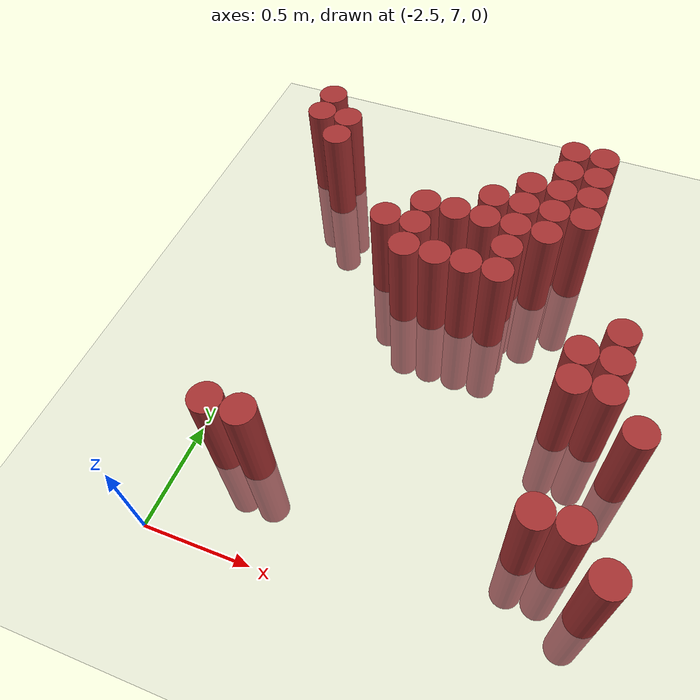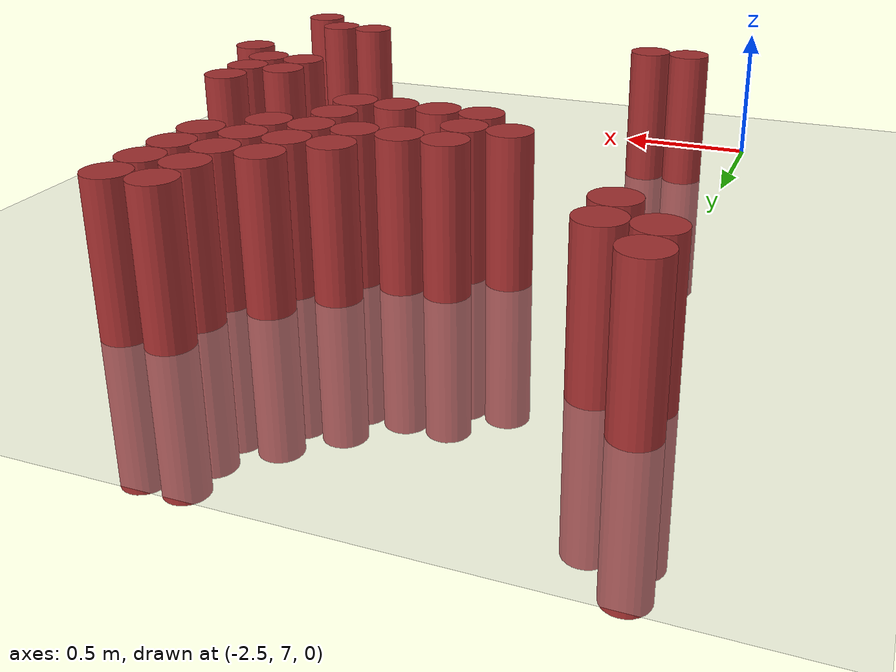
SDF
<sdf version="1.6">
 <world name="default">
  <model name="ground_plane">
   <static>1</static>
   <link name="link">
    <collision name="collision">
     <geometry><plane><normal>0 0 1</normal><size>100 100</size></plane></geometry>
     <surface><friction><ode><mu>100</mu><mu2>50</mu2></ode></friction></surface>
    </collision>
    <visual name="visual">
     <cast_shadows>0</cast_shadows>
     <geometry><plane><normal>0 0 1</normal><size>100 100</size></plane></geometry>
     <material>
      <script><uri>file://media/materials/scripts/gazebo.material</uri><name>Gazebo/Grey</name></script>
     </material>
    </visual>
   </link>
  </model>
  <model name="unit_cylinder_204">
   <static>1</static>
   <pose>-2.625000 9.225000 0.000000 0.000000 0.000000 0.000000</pose>
   <link name="link">
    <inertial>
     <mass>1</mass>
     <inertia><ixx>0.145833</ixx><ixy>0</ixy><ixz>0</ixz><iyy>0.145833</iyy><iyz>0</iyz><izz>0.125</izz></inertia>
    </inertial>
    <collision name="collision">
     <geometry><cylinder><radius>0.075000</radius><length>1</length></cylinder></geometry>
    </collision>
    <visual name="visual">
     <geometry><cylinder><radius>0.075000</radius><length>1</length></cylinder></geometry>
     <material>
      <ambient>0.648000 0.192000 0.192000 1</ambient>
      <diffuse>0.648000 0.192000 0.192000 1</diffuse>
     </material>
     <material>
      <script><name>Gazebo/Grey</name><uri>file://media/materials/scripts/gazebo.material</uri></script>
     </material>
    </visual>
    <sensor name="sensor_contact" type="contact"><contact><collision>collision</collision></contact></sensor>
   </link>
   <plugin filename="gz-sim-touchplugin-system" name="gz::sim::systems::TouchPlugin">
    <target>robot</target>
    <namespace>robot</namespace>
    <time>0.001</time>
    <enabled>true</enabled>
   </plugin>
  </model>
  <model name="unit_cylinder_205">
   <static>1</static>
   <pose>-2.625000 9.375000 0.000000 0.000000 0.000000 0.000000</pose>
   <link name="link">
    <inertial>
     <mass>1</mass>
     <inertia><ixx>0.145833</ixx><ixy>0</ixy><ixz>0</ixz><iyy>0.145833</iyy><iyz>0</iyz><izz>0.125</izz></inertia>
    </inertial>
    <collision name="collision">
     <geometry><cylinder><radius>0.075000</radius><length>1</length></cylinder></geometry>
    </collision>
    <visual name="visual">
     <geometry><cylinder><radius>0.075000</radius><length>1</length></cylinder></geometry>
     <material>
      <ambient>0.648000 0.192000 0.192000 1</ambient>
      <diffuse>0.648000 0.192000 0.192000 1</diffuse>
     </material>
     <material>
      <script><name>Gazebo/Grey</name><uri>file://media/materials/scripts/gazebo.material</uri></script>
     </material>
    </visual>
    <sensor name="sensor_contact" type="contact"><contact><collision>collision</collision></contact></sensor>
   </link>
   <plugin filename="gz-sim-touchplugin-system" name="gz::sim::systems::TouchPlugin">
    <target>robot</target>
    <namespace>robot</namespace>
    <time>0.001</time>
    <enabled>true</enabled>
   </plugin>
  </model>
  <model name="unit_cylinder_211">
   <static>1</static>
   <pose>-2.475000 9.075000 0.000000 0.000000 0.000000 0.000000</pose>
   <link name="link">
    <inertial>
     <mass>1</mass>
     <inertia><ixx>0.145833</ixx><ixy>0</ixy><ixz>0</ixz><iyy>0.145833</iyy><iyz>0</iyz><izz>0.125</izz></inertia>
    </inertial>
    <collision name="collision">
     <geometry><cylinder><radius>0.075000</radius><length>1</length></cylinder></geometry>
    </collision>
    <visual name="visual">
     <geometry><cylinder><radius>0.075000</radius><length>1</length></cylinder></geometry>
     <material>
      <ambient>0.648000 0.192000 0.192000 1</ambient>
      <diffuse>0.648000 0.192000 0.192000 1</diffuse>
     </material>
     <material>
      <script><name>Gazebo/Grey</name><uri>file://media/materials/scripts/gazebo.material</uri></script>
     </material>
    </visual>
    <sensor name="sensor_contact" type="contact"><contact><collision>collision</collision></contact></sensor>
   </link>
   <plugin filename="gz-sim-touchplugin-system" name="gz::sim::systems::TouchPlugin">
    <target>robot</target>
    <namespace>robot</namespace>
    <time>0.001</time>
    <enabled>true</enabled>
   </plugin>
  </model>
  <model name="unit_cylinder_212">
   <static>1</static>
   <pose>-2.475000 9.225000 0.000000 0.000000 0.000000 0.000000</pose>
   <link name="link">
    <inertial>
     <mass>1</mass>
     <inertia><ixx>0.145833</ixx><ixy>0</ixy><ixz>0</ixz><iyy>0.145833</iyy><iyz>0</iyz><izz>0.125</izz></inertia>
    </inertial>
    <collision name="collision">
     <geometry><cylinder><radius>0.075000</radius><length>1</length></cylinder></geometry>
    </collision>
    <visual name="visual">
     <geometry><cylinder><radius>0.075000</radius><length>1</length></cylinder></geometry>
     <material>
      <ambient>0.648000 0.192000 0.192000 1</ambient>
      <diffuse>0.648000 0.192000 0.192000 1</diffuse>
     </material>
     <material>
      <script><name>Gazebo/Grey</name><uri>file://media/materials/scripts/gazebo.material</uri></script>
     </material>
    </visual>
    <sensor name="sensor_contact" type="contact"><contact><collision>collision</collision></contact></sensor>
   </link>
   <plugin filename="gz-sim-touchplugin-system" name="gz::sim::systems::TouchPlugin">
    <target>robot</target>
    <namespace>robot</namespace>
    <time>0.001</time>
    <enabled>true</enabled>
   </plugin>
  </model>
  <model name="unit_cylinder_217">
   <static>1</static>
   <pose>-2.325000 7.425000 0.000000 0.000000 0.000000 0.000000</pose>
   <link name="link">
    <inertial>
     <mass>1</mass>
     <inertia><ixx>0.145833</ixx><ixy>0</ixy><ixz>0</ixz><iyy>0.145833</iyy><iyz>0</iyz><izz>0.125</izz></inertia>
    </inertial>
    <collision name="collision">
     <geometry><cylinder><radius>0.075000</radius><length>1</length></cylinder></geometry>
    </collision>
    <visual name="visual">
     <geometry><cylinder><radius>0.075000</radius><length>1</length></cylinder></geometry>
     <material>
      <ambient>0.648000 0.192000 0.192000 1</ambient>
      <diffuse>0.648000 0.192000 0.192000 1</diffuse>
     </material>
     <material>
      <script><name>Gazebo/Grey</name><uri>file://media/materials/scripts/gazebo.material</uri></script>
     </material>
    </visual>
    <sensor name="sensor_contact" type="contact"><contact><collision>collision</collision></contact></sensor>
   </link>
   <plugin filename="gz-sim-touchplugin-system" name="gz::sim::systems::TouchPlugin">
    <target>robot</target>
    <namespace>robot</namespace>
    <time>0.001</time>
    <enabled>true</enabled>
   </plugin>
  </model>
  <model name="unit_cylinder_224">
   <static>1</static>
   <pose>-2.175000 7.425000 0.000000 0.000000 0.000000 0.000000</pose>
   <link name="link">
    <inertial>
     <mass>1</mass>
     <inertia><ixx>0.145833</ixx><ixy>0</ixy><ixz>0</ixz><iyy>0.145833</iyy><iyz>0</iyz><izz>0.125</izz></inertia>
    </inertial>
    <collision name="collision">
     <geometry><cylinder><radius>0.075000</radius><length>1</length></cylinder></geometry>
    </collision>
    <visual name="visual">
     <geometry><cylinder><radius>0.075000</radius><length>1</length></cylinder></geometry>
     <material>
      <ambient>0.648000 0.192000 0.192000 1</ambient>
      <diffuse>0.648000 0.192000 0.192000 1</diffuse>
     </material>
     <material>
      <script><name>Gazebo/Grey</name><uri>file://media/materials/scripts/gazebo.material</uri></script>
     </material>
    </visual>
    <sensor name="sensor_contact" type="contact"><contact><collision>collision</collision></contact></sensor>
   </link>
   <plugin filename="gz-sim-touchplugin-system" name="gz::sim::systems::TouchPlugin">
    <target>robot</target>
    <namespace>robot</namespace>
    <time>0.001</time>
    <enabled>true</enabled>
   </plugin>
  </model>
  <model name="unit_cylinder_230">
   <static>1</static>
   <pose>-2.025000 8.625000 0.000000 0.000000 0.000000 0.000000</pose>
   <link name="link">
    <inertial>
     <mass>1</mass>
     <inertia><ixx>0.145833</ixx><ixy>0</ixy><ixz>0</ixz><iyy>0.145833</iyy><iyz>0</iyz><izz>0.125</izz></inertia>
    </inertial>
    <collision name="collision">
     <geometry><cylinder><radius>0.075000</radius><length>1</length></cylinder></geometry>
    </collision>
    <visual name="visual">
     <geometry><cylinder><radius>0.075000</radius><length>1</length></cylinder></geometry>
     <material>
      <ambient>0.648000 0.192000 0.192000 1</ambient>
      <diffuse>0.648000 0.192000 0.192000 1</diffuse>
     </material>
     <material>
      <script><name>Gazebo/Grey</name><uri>file://media/materials/scripts/gazebo.material</uri></script>
     </material>
    </visual>
    <sensor name="sensor_contact" type="contact"><contact><collision>collision</collision></contact></sensor>
   </link>
   <plugin filename="gz-sim-touchplugin-system" name="gz::sim::systems::TouchPlugin">
    <target>robot</target>
    <namespace>robot</namespace>
    <time>0.001</time>
    <enabled>true</enabled>
   </plugin>
  </model>
  <model name="unit_cylinder_233">
   <static>1</static>
   <pose>-1.875000 8.475000 0.000000 0.000000 0.000000 0.000000</pose>
   <link name="link">
    <inertial>
     <mass>1</mass>
     <inertia><ixx>0.145833</ixx><ixy>0</ixy><ixz>0</ixz><iyy>0.145833</iyy><iyz>0</iyz><izz>0.125</izz></inertia>
    </inertial>
    <collision name="collision">
     <geometry><cylinder><radius>0.075000</radius><length>1</length></cylinder></geometry>
    </collision>
    <visual name="visual">
     <geometry><cylinder><radius>0.075000</radius><length>1</length></cylinder></geometry>
     <material>
      <ambient>0.648000 0.192000 0.192000 1</ambient>
      <diffuse>0.648000 0.192000 0.192000 1</diffuse>
     </material>
     <material>
      <script><name>Gazebo/Grey</name><uri>file://media/materials/scripts/gazebo.material</uri></script>
     </material>
    </visual>
    <sensor name="sensor_contact" type="contact"><contact><collision>collision</collision></contact></sensor>
   </link>
   <plugin filename="gz-sim-touchplugin-system" name="gz::sim::systems::TouchPlugin">
    <target>robot</target>
    <namespace>robot</namespace>
    <time>0.001</time>
    <enabled>true</enabled>
   </plugin>
  </model>
  <model name="unit_cylinder_234">
   <static>1</static>
   <pose>-1.875000 8.625000 0.000000 0.000000 0.000000 0.000000</pose>
   <link name="link">
    <inertial>
     <mass>1</mass>
     <inertia><ixx>0.145833</ixx><ixy>0</ixy><ixz>0</ixz><iyy>0.145833</iyy><iyz>0</iyz><izz>0.125</izz></inertia>
    </inertial>
    <collision name="collision">
     <geometry><cylinder><radius>0.075000</radius><length>1</length></cylinder></geometry>
    </collision>
    <visual name="visual">
     <geometry><cylinder><radius>0.075000</radius><length>1</length></cylinder></geometry>
     <material>
      <ambient>0.648000 0.192000 0.192000 1</ambient>
      <diffuse>0.648000 0.192000 0.192000 1</diffuse>
     </material>
     <material>
      <script><name>Gazebo/Grey</name><uri>file://media/materials/scripts/gazebo.material</uri></script>
     </material>
    </visual>
    <sensor name="sensor_contact" type="contact"><contact><collision>collision</collision></contact></sensor>
   </link>
   <plugin filename="gz-sim-touchplugin-system" name="gz::sim::systems::TouchPlugin">
    <target>robot</target>
    <namespace>robot</namespace>
    <time>0.001</time>
    <enabled>true</enabled>
   </plugin>
  </model>
  <model name="unit_cylinder_235">
   <static>1</static>
   <pose>-1.875000 8.775000 0.000000 0.000000 0.000000 0.000000</pose>
   <link name="link">
    <inertial>
     <mass>1</mass>
     <inertia><ixx>0.145833</ixx><ixy>0</ixy><ixz>0</ixz><iyy>0.145833</iyy><iyz>0</iyz><izz>0.125</izz></inertia>
    </inertial>
    <collision name="collision">
     <geometry><cylinder><radius>0.075000</radius><length>1</length></cylinder></geometry>
    </collision>
    <visual name="visual">
     <geometry><cylinder><radius>0.075000</radius><length>1</length></cylinder></geometry>
     <material>
      <ambient>0.648000 0.192000 0.192000 1</ambient>
      <diffuse>0.648000 0.192000 0.192000 1</diffuse>
     </material>
     <material>
      <script><name>Gazebo/Grey</name><uri>file://media/materials/scripts/gazebo.material</uri></script>
     </material>
    </visual>
    <sensor name="sensor_contact" type="contact"><contact><collision>collision</collision></contact></sensor>
   </link>
   <plugin filename="gz-sim-touchplugin-system" name="gz::sim::systems::TouchPlugin">
    <target>robot</target>
    <namespace>robot</namespace>
    <time>0.001</time>
    <enabled>true</enabled>
   </plugin>
  </model>
  <model name="unit_cylinder_236">
   <static>1</static>
   <pose>-1.725000 8.475000 0.000000 0.000000 0.000000 0.000000</pose>
   <link name="link">
    <inertial>
     <mass>1</mass>
     <inertia><ixx>0.145833</ixx><ixy>0</ixy><ixz>0</ixz><iyy>0.145833</iyy><iyz>0</iyz><izz>0.125</izz></inertia>
    </inertial>
    <collision name="collision">
     <geometry><cylinder><radius>0.075000</radius><length>1</length></cylinder></geometry>
    </collision>
    <visual name="visual">
     <geometry><cylinder><radius>0.075000</radius><length>1</length></cylinder></geometry>
     <material>
      <ambient>0.648000 0.192000 0.192000 1</ambient>
      <diffuse>0.648000 0.192000 0.192000 1</diffuse>
     </material>
     <material>
      <script><name>Gazebo/Grey</name><uri>file://media/materials/scripts/gazebo.material</uri></script>
     </material>
    </visual>
    <sensor name="sensor_contact" type="contact"><contact><collision>collision</collision></contact></sensor>
   </link>
   <plugin filename="gz-sim-touchplugin-system" name="gz::sim::systems::TouchPlugin">
    <target>robot</target>
    <namespace>robot</namespace>
    <time>0.001</time>
    <enabled>true</enabled>
   </plugin>
  </model>
  <model name="unit_cylinder_237">
   <static>1</static>
   <pose>-1.725000 8.775000 0.000000 0.000000 0.000000 0.000000</pose>
   <link name="link">
    <inertial>
     <mass>1</mass>
     <inertia><ixx>0.145833</ixx><ixy>0</ixy><ixz>0</ixz><iyy>0.145833</iyy><iyz>0</iyz><izz>0.125</izz></inertia>
    </inertial>
    <collision name="collision">
     <geometry><cylinder><radius>0.075000</radius><length>1</length></cylinder></geometry>
    </collision>
    <visual name="visual">
     <geometry><cylinder><radius>0.075000</radius><length>1</length></cylinder></geometry>
     <material>
      <ambient>0.648000 0.192000 0.192000 1</ambient>
      <diffuse>0.648000 0.192000 0.192000 1</diffuse>
     </material>
     <material>
      <script><name>Gazebo/Grey</name><uri>file://media/materials/scripts/gazebo.material</uri></script>
     </material>
    </visual>
    <sensor name="sensor_contact" type="contact"><contact><collision>collision</collision></contact></sensor>
   </link>
   <plugin filename="gz-sim-touchplugin-system" name="gz::sim::systems::TouchPlugin">
    <target>robot</target>
    <namespace>robot</namespace>
    <time>0.001</time>
    <enabled>true</enabled>
   </plugin>
  </model>
  <model name="unit_cylinder_238">
   <static>1</static>
   <pose>-1.575000 8.475000 0.000000 0.000000 0.000000 0.000000</pose>
   <link name="link">
    <inertial>
     <mass>1</mass>
     <inertia><ixx>0.145833</ixx><ixy>0</ixy><ixz>0</ixz><iyy>0.145833</iyy><iyz>0</iyz><izz>0.125</izz></inertia>
    </inertial>
    <collision name="collision">
     <geometry><cylinder><radius>0.075000</radius><length>1</length></cylinder></geometry>
    </collision>
    <visual name="visual">
     <geometry><cylinder><radius>0.075000</radius><length>1</length></cylinder></geometry>
     <material>
      <ambient>0.648000 0.192000 0.192000 1</ambient>
      <diffuse>0.648000 0.192000 0.192000 1</diffuse>
     </material>
     <material>
      <script><name>Gazebo/Grey</name><uri>file://media/materials/scripts/gazebo.material</uri></script>
     </material>
    </visual>
    <sensor name="sensor_contact" type="contact"><contact><collision>collision</collision></contact></sensor>
   </link>
   <plugin filename="gz-sim-touchplugin-system" name="gz::sim::systems::TouchPlugin">
    <target>robot</target>
    <namespace>robot</namespace>
    <time>0.001</time>
    <enabled>true</enabled>
   </plugin>
  </model>
  <model name="unit_cylinder_239">
   <static>1</static>
   <pose>-1.575000 8.775000 0.000000 0.000000 0.000000 0.000000</pose>
   <link name="link">
    <inertial>
     <mass>1</mass>
     <inertia><ixx>0.145833</ixx><ixy>0</ixy><ixz>0</ixz><iyy>0.145833</iyy><iyz>0</iyz><izz>0.125</izz></inertia>
    </inertial>
    <collision name="collision">
     <geometry><cylinder><radius>0.075000</radius><length>1</length></cylinder></geometry>
    </collision>
    <visual name="visual">
     <geometry><cylinder><radius>0.075000</radius><length>1</length></cylinder></geometry>
     <material>
      <ambient>0.648000 0.192000 0.192000 1</ambient>
      <diffuse>0.648000 0.192000 0.192000 1</diffuse>
     </material>
     <material>
      <script><name>Gazebo/Grey</name><uri>file://media/materials/scripts/gazebo.material</uri></script>
     </material>
    </visual>
    <sensor name="sensor_contact" type="contact"><contact><collision>collision</collision></contact></sensor>
   </link>
   <plugin filename="gz-sim-touchplugin-system" name="gz::sim::systems::TouchPlugin">
    <target>robot</target>
    <namespace>robot</namespace>
    <time>0.001</time>
    <enabled>true</enabled>
   </plugin>
  </model>
  <model name="unit_cylinder_240">
   <static>1</static>
   <pose>-1.575000 8.925000 0.000000 0.000000 0.000000 0.000000</pose>
   <link name="link">
    <inertial>
     <mass>1</mass>
     <inertia><ixx>0.145833</ixx><ixy>0</ixy><ixz>0</ixz><iyy>0.145833</iyy><iyz>0</iyz><izz>0.125</izz></inertia>
    </inertial>
    <collision name="collision">
     <geometry><cylinder><radius>0.075000</radius><length>1</length></cylinder></geometry>
    </collision>
    <visual name="visual">
     <geometry><cylinder><radius>0.075000</radius><length>1</length></cylinder></geometry>
     <material>
      <ambient>0.648000 0.192000 0.192000 1</ambient>
      <diffuse>0.648000 0.192000 0.192000 1</diffuse>
     </material>
     <material>
      <script><name>Gazebo/Grey</name><uri>file://media/materials/scripts/gazebo.material</uri></script>
     </material>
    </visual>
    <sensor name="sensor_contact" type="contact"><contact><collision>collision</collision></contact></sensor>
   </link>
   <plugin filename="gz-sim-touchplugin-system" name="gz::sim::systems::TouchPlugin">
    <target>robot</target>
    <namespace>robot</namespace>
    <time>0.001</time>
    <enabled>true</enabled>
   </plugin>
  </model>
  <model name="unit_cylinder_241">
   <static>1</static>
   <pose>-1.425000 8.475000 0.000000 0.000000 0.000000 0.000000</pose>
   <link name="link">
    <inertial>
     <mass>1</mass>
     <inertia><ixx>0.145833</ixx><ixy>0</ixy><ixz>0</ixz><iyy>0.145833</iyy><iyz>0</iyz><izz>0.125</izz></inertia>
    </inertial>
    <collision name="collision">
     <geometry><cylinder><radius>0.075000</radius><length>1</length></cylinder></geometry>
    </collision>
    <visual name="visual">
     <geometry><cylinder><radius>0.075000</radius><length>1</length></cylinder></geometry>
     <material>
      <ambient>0.648000 0.192000 0.192000 1</ambient>
      <diffuse>0.648000 0.192000 0.192000 1</diffuse>
     </material>
     <material>
      <script><name>Gazebo/Grey</name><uri>file://media/materials/scripts/gazebo.material</uri></script>
     </material>
    </visual>
    <sensor name="sensor_contact" type="contact"><contact><collision>collision</collision></contact></sensor>
   </link>
   <plugin filename="gz-sim-touchplugin-system" name="gz::sim::systems::TouchPlugin">
    <target>robot</target>
    <namespace>robot</namespace>
    <time>0.001</time>
    <enabled>true</enabled>
   </plugin>
  </model>
  <model name="unit_cylinder_242">
   <static>1</static>
   <pose>-1.425000 8.625000 0.000000 0.000000 0.000000 0.000000</pose>
   <link name="link">
    <inertial>
     <mass>1</mass>
     <inertia><ixx>0.145833</ixx><ixy>0</ixy><ixz>0</ixz><iyy>0.145833</iyy><iyz>0</iyz><izz>0.125</izz></inertia>
    </inertial>
    <collision name="collision">
     <geometry><cylinder><radius>0.075000</radius><length>1</length></cylinder></geometry>
    </collision>
    <visual name="visual">
     <geometry><cylinder><radius>0.075000</radius><length>1</length></cylinder></geometry>
     <material>
      <ambient>0.648000 0.192000 0.192000 1</ambient>
      <diffuse>0.648000 0.192000 0.192000 1</diffuse>
     </material>
     <material>
      <script><name>Gazebo/Grey</name><uri>file://media/materials/scripts/gazebo.material</uri></script>
     </material>
    </visual>
    <sensor name="sensor_contact" type="contact"><contact><collision>collision</collision></contact></sensor>
   </link>
   <plugin filename="gz-sim-touchplugin-system" name="gz::sim::systems::TouchPlugin">
    <target>robot</target>
    <namespace>robot</namespace>
    <time>0.001</time>
    <enabled>true</enabled>
   </plugin>
  </model>
  <model name="unit_cylinder_243">
   <static>1</static>
   <pose>-1.425000 8.775000 0.000000 0.000000 0.000000 0.000000</pose>
   <link name="link">
    <inertial>
     <mass>1</mass>
     <inertia><ixx>0.145833</ixx><ixy>0</ixy><ixz>0</ixz><iyy>0.145833</iyy><iyz>0</iyz><izz>0.125</izz></inertia>
    </inertial>
    <collision name="collision">
     <geometry><cylinder><radius>0.075000</radius><length>1</length></cylinder></geometry>
    </collision>
    <visual name="visual">
     <geometry><cylinder><radius>0.075000</radius><length>1</length></cylinder></geometry>
     <material>
      <ambient>0.648000 0.192000 0.192000 1</ambient>
      <diffuse>0.648000 0.192000 0.192000 1</diffuse>
     </material>
     <material>
      <script><name>Gazebo/Grey</name><uri>file://media/materials/scripts/gazebo.material</uri></script>
     </material>
    </visual>
    <sensor name="sensor_contact" type="contact"><contact><collision>collision</collision></contact></sensor>
   </link>
   <plugin filename="gz-sim-touchplugin-system" name="gz::sim::systems::TouchPlugin">
    <target>robot</target>
    <namespace>robot</namespace>
    <time>0.001</time>
    <enabled>true</enabled>
   </plugin>
  </model>
  <model name="unit_cylinder_244">
   <static>1</static>
   <pose>-1.425000 8.925000 0.000000 0.000000 0.000000 0.000000</pose>
   <link name="link">
    <inertial>
     <mass>1</mass>
     <inertia><ixx>0.145833</ixx><ixy>0</ixy><ixz>0</ixz><iyy>0.145833</iyy><iyz>0</iyz><izz>0.125</izz></inertia>
    </inertial>
    <collision name="collision">
     <geometry><cylinder><radius>0.075000</radius><length>1</length></cylinder></geometry>
    </collision>
    <visual name="visual">
     <geometry><cylinder><radius>0.075000</radius><length>1</length></cylinder></geometry>
     <material>
      <ambient>0.648000 0.192000 0.192000 1</ambient>
      <diffuse>0.648000 0.192000 0.192000 1</diffuse>
     </material>
     <material>
      <script><name>Gazebo/Grey</name><uri>file://media/materials/scripts/gazebo.material</uri></script>
     </material>
    </visual>
    <sensor name="sensor_contact" type="contact"><contact><collision>collision</collision></contact></sensor>
   </link>
   <plugin filename="gz-sim-touchplugin-system" name="gz::sim::systems::TouchPlugin">
    <target>robot</target>
    <namespace>robot</namespace>
    <time>0.001</time>
    <enabled>true</enabled>
   </plugin>
  </model>
  <model name="unit_cylinder_245">
   <static>1</static>
   <pose>-1.425000 9.075000 0.000000 0.000000 0.000000 0.000000</pose>
   <link name="link">
    <inertial>
     <mass>1</mass>
     <inertia><ixx>0.145833</ixx><ixy>0</ixy><ixz>0</ixz><iyy>0.145833</iyy><iyz>0</iyz><izz>0.125</izz></inertia>
    </inertial>
    <collision name="collision">
     <geometry><cylinder><radius>0.075000</radius><length>1</length></cylinder></geometry>
    </collision>
    <visual name="visual">
     <geometry><cylinder><radius>0.075000</radius><length>1</length></cylinder></geometry>
     <material>
      <ambient>0.648000 0.192000 0.192000 1</ambient>
      <diffuse>0.648000 0.192000 0.192000 1</diffuse>
     </material>
     <material>
      <script><name>Gazebo/Grey</name><uri>file://media/materials/scripts/gazebo.material</uri></script>
     </material>
    </visual>
    <sensor name="sensor_contact" type="contact"><contact><collision>collision</collision></contact></sensor>
   </link>
   <plugin filename="gz-sim-touchplugin-system" name="gz::sim::systems::TouchPlugin">
    <target>robot</target>
    <namespace>robot</namespace>
    <time>0.001</time>
    <enabled>true</enabled>
   </plugin>
  </model>
  <model name="unit_cylinder_246">
   <static>1</static>
   <pose>-1.275000 8.775000 0.000000 0.000000 0.000000 0.000000</pose>
   <link name="link">
    <inertial>
     <mass>1</mass>
     <inertia><ixx>0.145833</ixx><ixy>0</ixy><ixz>0</ixz><iyy>0.145833</iyy><iyz>0</iyz><izz>0.125</izz></inertia>
    </inertial>
    <collision name="collision">
     <geometry><cylinder><radius>0.075000</radius><length>1</length></cylinder></geometry>
    </collision>
    <visual name="visual">
     <geometry><cylinder><radius>0.075000</radius><length>1</length></cylinder></geometry>
     <material>
      <ambient>0.648000 0.192000 0.192000 1</ambient>
      <diffuse>0.648000 0.192000 0.192000 1</diffuse>
     </material>
     <material>
      <script><name>Gazebo/Grey</name><uri>file://media/materials/scripts/gazebo.material</uri></script>
     </material>
    </visual>
    <sensor name="sensor_contact" type="contact"><contact><collision>collision</collision></contact></sensor>
   </link>
   <plugin filename="gz-sim-touchplugin-system" name="gz::sim::systems::TouchPlugin">
    <target>robot</target>
    <namespace>robot</namespace>
    <time>0.001</time>
    <enabled>true</enabled>
   </plugin>
  </model>
  <model name="unit_cylinder_247">
   <static>1</static>
   <pose>-1.275000 8.925000 0.000000 0.000000 0.000000 0.000000</pose>
   <link name="link">
    <inertial>
     <mass>1</mass>
     <inertia><ixx>0.145833</ixx><ixy>0</ixy><ixz>0</ixz><iyy>0.145833</iyy><iyz>0</iyz><izz>0.125</izz></inertia>
    </inertial>
    <collision name="collision">
     <geometry><cylinder><radius>0.075000</radius><length>1</length></cylinder></geometry>
    </collision>
    <visual name="visual">
     <geometry><cylinder><radius>0.075000</radius><length>1</length></cylinder></geometry>
     <material>
      <ambient>0.648000 0.192000 0.192000 1</ambient>
      <diffuse>0.648000 0.192000 0.192000 1</diffuse>
     </material>
     <material>
      <script><name>Gazebo/Grey</name><uri>file://media/materials/scripts/gazebo.material</uri></script>
     </material>
    </visual>
    <sensor name="sensor_contact" type="contact"><contact><collision>collision</collision></contact></sensor>
   </link>
   <plugin filename="gz-sim-touchplugin-system" name="gz::sim::systems::TouchPlugin">
    <target>robot</target>
    <namespace>robot</namespace>
    <time>0.001</time>
    <enabled>true</enabled>
   </plugin>
  </model>
  <model name="unit_cylinder_248">
   <static>1</static>
   <pose>-1.275000 9.075000 0.000000 0.000000 0.000000 0.000000</pose>
   <link name="link">
    <inertial>
     <mass>1</mass>
     <inertia><ixx>0.145833</ixx><ixy>0</ixy><ixz>0</ixz><iyy>0.145833</iyy><iyz>0</iyz><izz>0.125</izz></inertia>
    </inertial>
    <collision name="collision">
     <geometry><cylinder><radius>0.075000</radius><length>1</length></cylinder></geometry>
    </collision>
    <visual name="visual">
     <geometry><cylinder><radius>0.075000</radius><length>1</length></cylinder></geometry>
     <material>
      <ambient>0.648000 0.192000 0.192000 1</ambient>
      <diffuse>0.648000 0.192000 0.192000 1</diffuse>
     </material>
     <material>
      <script><name>Gazebo/Grey</name><uri>file://media/materials/scripts/gazebo.material</uri></script>
     </material>
    </visual>
    <sensor name="sensor_contact" type="contact"><contact><collision>collision</collision></contact></sensor>
   </link>
   <plugin filename="gz-sim-touchplugin-system" name="gz::sim::systems::TouchPlugin">
    <target>robot</target>
    <namespace>robot</namespace>
    <time>0.001</time>
    <enabled>true</enabled>
   </plugin>
  </model>
  <model name="unit_cylinder_249">
   <static>1</static>
   <pose>-1.275000 9.225000 0.000000 0.000000 0.000000 0.000000</pose>
   <link name="link">
    <inertial>
     <mass>1</mass>
     <inertia><ixx>0.145833</ixx><ixy>0</ixy><ixz>0</ixz><iyy>0.145833</iyy><iyz>0</iyz><izz>0.125</izz></inertia>
    </inertial>
    <collision name="collision">
     <geometry><cylinder><radius>0.075000</radius><length>1</length></cylinder></geometry>
    </collision>
    <visual name="visual">
     <geometry><cylinder><radius>0.075000</radius><length>1</length></cylinder></geometry>
     <material>
      <ambient>0.648000 0.192000 0.192000 1</ambient>
      <diffuse>0.648000 0.192000 0.192000 1</diffuse>
     </material>
     <material>
      <script><name>Gazebo/Grey</name><uri>file://media/materials/scripts/gazebo.material</uri></script>
     </material>
    </visual>
    <sensor name="sensor_contact" type="contact"><contact><collision>collision</collision></contact></sensor>
   </link>
   <plugin filename="gz-sim-touchplugin-system" name="gz::sim::systems::TouchPlugin">
    <target>robot</target>
    <namespace>robot</namespace>
    <time>0.001</time>
    <enabled>true</enabled>
   </plugin>
  </model>
  <model name="unit_cylinder_250">
   <static>1</static>
   <pose>-1.275000 9.375000 0.000000 0.000000 0.000000 0.000000</pose>
   <link name="link">
    <inertial>
     <mass>1</mass>
     <inertia><ixx>0.145833</ixx><ixy>0</ixy><ixz>0</ixz><iyy>0.145833</iyy><iyz>0</iyz><izz>0.125</izz></inertia>
    </inertial>
    <collision name="collision">
     <geometry><cylinder><radius>0.075000</radius><length>1</length></cylinder></geometry>
    </collision>
    <visual name="visual">
     <geometry><cylinder><radius>0.075000</radius><length>1</length></cylinder></geometry>
     <material>
      <ambient>0.648000 0.192000 0.192000 1</ambient>
      <diffuse>0.648000 0.192000 0.192000 1</diffuse>
     </material>
     <material>
      <script><name>Gazebo/Grey</name><uri>file://media/materials/scripts/gazebo.material</uri></script>
     </material>
    </visual>
    <sensor name="sensor_contact" type="contact"><contact><collision>collision</collision></contact></sensor>
   </link>
   <plugin filename="gz-sim-touchplugin-system" name="gz::sim::systems::TouchPlugin">
    <target>robot</target>
    <namespace>robot</namespace>
    <time>0.001</time>
    <enabled>true</enabled>
   </plugin>
  </model>
  <model name="unit_cylinder_251">
   <static>1</static>
   <pose>-1.125000 8.925000 0.000000 0.000000 0.000000 0.000000</pose>
   <link name="link">
    <inertial>
     <mass>1</mass>
     <inertia><ixx>0.145833</ixx><ixy>0</ixy><ixz>0</ixz><iyy>0.145833</iyy><iyz>0</iyz><izz>0.125</izz></inertia>
    </inertial>
    <collision name="collision">
     <geometry><cylinder><radius>0.075000</radius><length>1</length></cylinder></geometry>
    </collision>
    <visual name="visual">
     <geometry><cylinder><radius>0.075000</radius><length>1</length></cylinder></geometry>
     <material>
      <ambient>0.648000 0.192000 0.192000 1</ambient>
      <diffuse>0.648000 0.192000 0.192000 1</diffuse>
     </material>
     <material>
      <script><name>Gazebo/Grey</name><uri>file://media/materials/scripts/gazebo.material</uri></script>
     </material>
    </visual>
    <sensor name="sensor_contact" type="contact"><contact><collision>collision</collision></contact></sensor>
   </link>
   <plugin filename="gz-sim-touchplugin-system" name="gz::sim::systems::TouchPlugin">
    <target>robot</target>
    <namespace>robot</namespace>
    <time>0.001</time>
    <enabled>true</enabled>
   </plugin>
  </model>
  <model name="unit_cylinder_252">
   <static>1</static>
   <pose>-1.125000 9.075000 0.000000 0.000000 0.000000 0.000000</pose>
   <link name="link">
    <inertial>
     <mass>1</mass>
     <inertia><ixx>0.145833</ixx><ixy>0</ixy><ixz>0</ixz><iyy>0.145833</iyy><iyz>0</iyz><izz>0.125</izz></inertia>
    </inertial>
    <collision name="collision">
     <geometry><cylinder><radius>0.075000</radius><length>1</length></cylinder></geometry>
    </collision>
    <visual name="visual">
     <geometry><cylinder><radius>0.075000</radius><length>1</length></cylinder></geometry>
     <material>
      <ambient>0.648000 0.192000 0.192000 1</ambient>
      <diffuse>0.648000 0.192000 0.192000 1</diffuse>
     </material>
     <material>
      <script><name>Gazebo/Grey</name><uri>file://media/materials/scripts/gazebo.material</uri></script>
     </material>
    </visual>
    <sensor name="sensor_contact" type="contact"><contact><collision>collision</collision></contact></sensor>
   </link>
   <plugin filename="gz-sim-touchplugin-system" name="gz::sim::systems::TouchPlugin">
    <target>robot</target>
    <namespace>robot</namespace>
    <time>0.001</time>
    <enabled>true</enabled>
   </plugin>
  </model>
  <model name="unit_cylinder_253">
   <static>1</static>
   <pose>-1.125000 9.225000 0.000000 0.000000 0.000000 0.000000</pose>
   <link name="link">
    <inertial>
     <mass>1</mass>
     <inertia><ixx>0.145833</ixx><ixy>0</ixy><ixz>0</ixz><iyy>0.145833</iyy><iyz>0</iyz><izz>0.125</izz></inertia>
    </inertial>
    <collision name="collision">
     <geometry><cylinder><radius>0.075000</radius><length>1</length></cylinder></geometry>
    </collision>
    <visual name="visual">
     <geometry><cylinder><radius>0.075000</radius><length>1</length></cylinder></geometry>
     <material>
      <ambient>0.648000 0.192000 0.192000 1</ambient>
      <diffuse>0.648000 0.192000 0.192000 1</diffuse>
     </material>
     <material>
      <script><name>Gazebo/Grey</name><uri>file://media/materials/scripts/gazebo.material</uri></script>
     </material>
    </visual>
    <sensor name="sensor_contact" type="contact"><contact><collision>collision</collision></contact></sensor>
   </link>
   <plugin filename="gz-sim-touchplugin-system" name="gz::sim::systems::TouchPlugin">
    <target>robot</target>
    <namespace>robot</namespace>
    <time>0.001</time>
    <enabled>true</enabled>
   </plugin>
  </model>
  <model name="unit_cylinder_254">
   <static>1</static>
   <pose>-1.125000 9.375000 0.000000 0.000000 0.000000 0.000000</pose>
   <link name="link">
    <inertial>
     <mass>1</mass>
     <inertia><ixx>0.145833</ixx><ixy>0</ixy><ixz>0</ixz><iyy>0.145833</iyy><iyz>0</iyz><izz>0.125</izz></inertia>
    </inertial>
    <collision name="collision">
     <geometry><cylinder><radius>0.075000</radius><length>1</length></cylinder></geometry>
    </collision>
    <visual name="visual">
     <geometry><cylinder><radius>0.075000</radius><length>1</length></cylinder></geometry>
     <material>
      <ambient>0.648000 0.192000 0.192000 1</ambient>
      <diffuse>0.648000 0.192000 0.192000 1</diffuse>
     </material>
     <material>
      <script><name>Gazebo/Grey</name><uri>file://media/materials/scripts/gazebo.material</uri></script>
     </material>
    </visual>
    <sensor name="sensor_contact" type="contact"><contact><collision>collision</collision></contact></sensor>
   </link>
   <plugin filename="gz-sim-touchplugin-system" name="gz::sim::systems::TouchPlugin">
    <target>robot</target>
    <namespace>robot</namespace>
    <time>0.001</time>
    <enabled>true</enabled>
   </plugin>
  </model>
  <model name="unit_cylinder_256">
   <static>1</static>
   <pose>-0.975000 7.425000 0.000000 0.000000 0.000000 0.000000</pose>
   <link name="link">
    <inertial>
     <mass>1</mass>
     <inertia><ixx>0.145833</ixx><ixy>0</ixy><ixz>0</ixz><iyy>0.145833</iyy><iyz>0</iyz><izz>0.125</izz></inertia>
    </inertial>
    <collision name="collision">
     <geometry><cylinder><radius>0.075000</radius><length>1</length></cylinder></geometry>
    </collision>
    <visual name="visual">
     <geometry><cylinder><radius>0.075000</radius><length>1</length></cylinder></geometry>
     <material>
      <ambient>0.648000 0.192000 0.192000 1</ambient>
      <diffuse>0.648000 0.192000 0.192000 1</diffuse>
     </material>
     <material>
      <script><name>Gazebo/Grey</name><uri>file://media/materials/scripts/gazebo.material</uri></script>
     </material>
    </visual>
    <sensor name="sensor_contact" type="contact"><contact><collision>collision</collision></contact></sensor>
   </link>
   <plugin filename="gz-sim-touchplugin-system" name="gz::sim::systems::TouchPlugin">
    <target>robot</target>
    <namespace>robot</namespace>
    <time>0.001</time>
    <enabled>true</enabled>
   </plugin>
  </model>
  <model name="unit_cylinder_257">
   <static>1</static>
   <pose>-0.975000 8.025000 0.000000 0.000000 0.000000 0.000000</pose>
   <link name="link">
    <inertial>
     <mass>1</mass>
     <inertia><ixx>0.145833</ixx><ixy>0</ixy><ixz>0</ixz><iyy>0.145833</iyy><iyz>0</iyz><izz>0.125</izz></inertia>
    </inertial>
    <collision name="collision">
     <geometry><cylinder><radius>0.075000</radius><length>1</length></cylinder></geometry>
    </collision>
    <visual name="visual">
     <geometry><cylinder><radius>0.075000</radius><length>1</length></cylinder></geometry>
     <material>
      <ambient>0.648000 0.192000 0.192000 1</ambient>
      <diffuse>0.648000 0.192000 0.192000 1</diffuse>
     </material>
     <material>
      <script><name>Gazebo/Grey</name><uri>file://media/materials/scripts/gazebo.material</uri></script>
     </material>
    </visual>
    <sensor name="sensor_contact" type="contact"><contact><collision>collision</collision></contact></sensor>
   </link>
   <plugin filename="gz-sim-touchplugin-system" name="gz::sim::systems::TouchPlugin">
    <target>robot</target>
    <namespace>robot</namespace>
    <time>0.001</time>
    <enabled>true</enabled>
   </plugin>
  </model>
  <model name="unit_cylinder_258">
   <static>1</static>
   <pose>-0.975000 8.175000 0.000000 0.000000 0.000000 0.000000</pose>
   <link name="link">
    <inertial>
     <mass>1</mass>
     <inertia><ixx>0.145833</ixx><ixy>0</ixy><ixz>0</ixz><iyy>0.145833</iyy><iyz>0</iyz><izz>0.125</izz></inertia>
    </inertial>
    <collision name="collision">
     <geometry><cylinder><radius>0.075000</radius><length>1</length></cylinder></geometry>
    </collision>
    <visual name="visual">
     <geometry><cylinder><radius>0.075000</radius><length>1</length></cylinder></geometry>
     <material>
      <ambient>0.648000 0.192000 0.192000 1</ambient>
      <diffuse>0.648000 0.192000 0.192000 1</diffuse>
     </material>
     <material>
      <script><name>Gazebo/Grey</name><uri>file://media/materials/scripts/gazebo.material</uri></script>
     </material>
    </visual>
    <sensor name="sensor_contact" type="contact"><contact><collision>collision</collision></contact></sensor>
   </link>
   <plugin filename="gz-sim-touchplugin-system" name="gz::sim::systems::TouchPlugin">
    <target>robot</target>
    <namespace>robot</namespace>
    <time>0.001</time>
    <enabled>true</enabled>
   </plugin>
  </model>
  <model name="unit_cylinder_264">
   <static>1</static>
   <pose>-0.825000 7.425000 0.000000 0.000000 0.000000 0.000000</pose>
   <link name="link">
    <inertial>
     <mass>1</mass>
     <inertia><ixx>0.145833</ixx><ixy>0</ixy><ixz>0</ixz><iyy>0.145833</iyy><iyz>0</iyz><izz>0.125</izz></inertia>
    </inertial>
    <collision name="collision">
     <geometry><cylinder><radius>0.075000</radius><length>1</length></cylinder></geometry>
    </collision>
    <visual name="visual">
     <geometry><cylinder><radius>0.075000</radius><length>1</length></cylinder></geometry>
     <material>
      <ambient>0.648000 0.192000 0.192000 1</ambient>
      <diffuse>0.648000 0.192000 0.192000 1</diffuse>
     </material>
     <material>
      <script><name>Gazebo/Grey</name><uri>file://media/materials/scripts/gazebo.material</uri></script>
     </material>
    </visual>
    <sensor name="sensor_contact" type="contact"><contact><collision>collision</collision></contact></sensor>
   </link>
   <plugin filename="gz-sim-touchplugin-system" name="gz::sim::systems::TouchPlugin">
    <target>robot</target>
    <namespace>robot</namespace>
    <time>0.001</time>
    <enabled>true</enabled>
   </plugin>
  </model>
  <model name="unit_cylinder_265">
   <static>1</static>
   <pose>-0.825000 8.025000 0.000000 0.000000 0.000000 0.000000</pose>
   <link name="link">
    <inertial>
     <mass>1</mass>
     <inertia><ixx>0.145833</ixx><ixy>0</ixy><ixz>0</ixz><iyy>0.145833</iyy><iyz>0</iyz><izz>0.125</izz></inertia>
    </inertial>
    <collision name="collision">
     <geometry><cylinder><radius>0.075000</radius><length>1</length></cylinder></geometry>
    </collision>
    <visual name="visual">
     <geometry><cylinder><radius>0.075000</radius><length>1</length></cylinder></geometry>
     <material>
      <ambient>0.648000 0.192000 0.192000 1</ambient>
      <diffuse>0.648000 0.192000 0.192000 1</diffuse>
     </material>
     <material>
      <script><name>Gazebo/Grey</name><uri>file://media/materials/scripts/gazebo.material</uri></script>
     </material>
    </visual>
    <sensor name="sensor_contact" type="contact"><contact><collision>collision</collision></contact></sensor>
   </link>
   <plugin filename="gz-sim-touchplugin-system" name="gz::sim::systems::TouchPlugin">
    <target>robot</target>
    <namespace>robot</namespace>
    <time>0.001</time>
    <enabled>true</enabled>
   </plugin>
  </model>
  <model name="unit_cylinder_266">
   <static>1</static>
   <pose>-0.825000 8.175000 0.000000 0.000000 0.000000 0.000000</pose>
   <link name="link">
    <inertial>
     <mass>1</mass>
     <inertia><ixx>0.145833</ixx><ixy>0</ixy><ixz>0</ixz><iyy>0.145833</iyy><iyz>0</iyz><izz>0.125</izz></inertia>
    </inertial>
    <collision name="collision">
     <geometry><cylinder><radius>0.075000</radius><length>1</length></cylinder></geometry>
    </collision>
    <visual name="visual">
     <geometry><cylinder><radius>0.075000</radius><length>1</length></cylinder></geometry>
     <material>
      <ambient>0.648000 0.192000 0.192000 1</ambient>
      <diffuse>0.648000 0.192000 0.192000 1</diffuse>
     </material>
     <material>
      <script><name>Gazebo/Grey</name><uri>file://media/materials/scripts/gazebo.material</uri></script>
     </material>
    </visual>
    <sensor name="sensor_contact" type="contact"><contact><collision>collision</collision></contact></sensor>
   </link>
   <plugin filename="gz-sim-touchplugin-system" name="gz::sim::systems::TouchPlugin">
    <target>robot</target>
    <namespace>robot</namespace>
    <time>0.001</time>
    <enabled>true</enabled>
   </plugin>
  </model>
  <model name="unit_cylinder_267">
   <static>1</static>
   <pose>-0.825000 8.325000 0.000000 0.000000 0.000000 0.000000</pose>
   <link name="link">
    <inertial>
     <mass>1</mass>
     <inertia><ixx>0.145833</ixx><ixy>0</ixy><ixz>0</ixz><iyy>0.145833</iyy><iyz>0</iyz><izz>0.125</izz></inertia>
    </inertial>
    <collision name="collision">
     <geometry><cylinder><radius>0.075000</radius><length>1</length></cylinder></geometry>
    </collision>
    <visual name="visual">
     <geometry><cylinder><radius>0.075000</radius><length>1</length></cylinder></geometry>
     <material>
      <ambient>0.648000 0.192000 0.192000 1</ambient>
      <diffuse>0.648000 0.192000 0.192000 1</diffuse>
     </material>
     <material>
      <script><name>Gazebo/Grey</name><uri>file://media/materials/scripts/gazebo.material</uri></script>
     </material>
    </visual>
    <sensor name="sensor_contact" type="contact"><contact><collision>collision</collision></contact></sensor>
   </link>
   <plugin filename="gz-sim-touchplugin-system" name="gz::sim::systems::TouchPlugin">
    <target>robot</target>
    <namespace>robot</namespace>
    <time>0.001</time>
    <enabled>true</enabled>
   </plugin>
  </model>
  <model name="unit_cylinder_272">
   <static>1</static>
   <pose>-0.675000 7.275000 0.000000 0.000000 0.000000 0.000000</pose>
   <link name="link">
    <inertial>
     <mass>1</mass>
     <inertia><ixx>0.145833</ixx><ixy>0</ixy><ixz>0</ixz><iyy>0.145833</iyy><iyz>0</iyz><izz>0.125</izz></inertia>
    </inertial>
    <collision name="collision">
     <geometry><cylinder><radius>0.075000</radius><length>1</length></cylinder></geometry>
    </collision>
    <visual name="visual">
     <geometry><cylinder><radius>0.075000</radius><length>1</length></cylinder></geometry>
     <material>
      <ambient>0.648000 0.192000 0.192000 1</ambient>
      <diffuse>0.648000 0.192000 0.192000 1</diffuse>
     </material>
     <material>
      <script><name>Gazebo/Grey</name><uri>file://media/materials/scripts/gazebo.material</uri></script>
     </material>
    </visual>
    <sensor name="sensor_contact" type="contact"><contact><collision>collision</collision></contact></sensor>
   </link>
   <plugin filename="gz-sim-touchplugin-system" name="gz::sim::systems::TouchPlugin">
    <target>robot</target>
    <namespace>robot</namespace>
    <time>0.001</time>
    <enabled>true</enabled>
   </plugin>
  </model>
  <model name="unit_cylinder_273">
   <static>1</static>
   <pose>-0.675000 7.875000 0.000000 0.000000 0.000000 0.000000</pose>
   <link name="link">
    <inertial>
     <mass>1</mass>
     <inertia><ixx>0.145833</ixx><ixy>0</ixy><ixz>0</ixz><iyy>0.145833</iyy><iyz>0</iyz><izz>0.125</izz></inertia>
    </inertial>
    <collision name="collision">
     <geometry><cylinder><radius>0.075000</radius><length>1</length></cylinder></geometry>
    </collision>
    <visual name="visual">
     <geometry><cylinder><radius>0.075000</radius><length>1</length></cylinder></geometry>
     <material>
      <ambient>0.648000 0.192000 0.192000 1</ambient>
      <diffuse>0.648000 0.192000 0.192000 1</diffuse>
     </material>
     <material>
      <script><name>Gazebo/Grey</name><uri>file://media/materials/scripts/gazebo.material</uri></script>
     </material>
    </visual>
    <sensor name="sensor_contact" type="contact"><contact><collision>collision</collision></contact></sensor>
   </link>
   <plugin filename="gz-sim-touchplugin-system" name="gz::sim::systems::TouchPlugin">
    <target>robot</target>
    <namespace>robot</namespace>
    <time>0.001</time>
    <enabled>true</enabled>
   </plugin>
  </model>
 </world>
</sdf>
